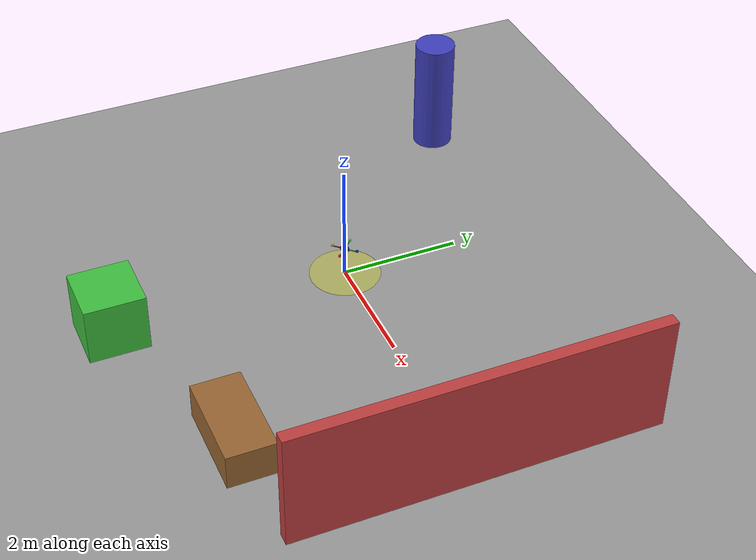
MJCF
<mujoco model="quadcopter_hil">

  <compiler angle="radian" autolimits="true"/>

  <option timestep="0.001" gravity="0 0 -9.81" integrator="RK4">
    <flag contact="enable" energy="enable"/>
  </option>

  <!-- ── Visual defaults ────────────────────────────────────────────────── -->
  <visual>
    <headlight diffuse="0.6 0.6 0.6" ambient="0.3 0.3 0.3" specular="0.2 0.2 0.2"/>
    <rgba haze="0.15 0.25 0.35 1"/>
    <global azimuth="120" elevation="-20"/>
  </visual>

  <default>
    <geom rgba="0.6 0.6 0.6 1" condim="3" friction="1 0.5 0.5"/>
    <joint damping="0.001"/>
  </default>

  <!-- ── Assets ─────────────────────────────────────────────────────────── -->
  <asset>
    <texture type="2d" name="grid_tex" builtin="checker" width="512" height="512"
             rgb1="0.35 0.35 0.35" rgb2="0.45 0.45 0.45"/>
    <material name="grid_mat" texture="grid_tex" texrepeat="20 20"
              specular="0.1" shininess="0.1"/>
    <texture type="skybox" name="sky_tex" builtin="gradient"
             rgb1="0.4 0.6 0.8" rgb2="0.08 0.08 0.25"
             width="512" height="3072"/>
  </asset>

  <!-- ── World ──────────────────────────────────────────────────────────── -->
  <worldbody>
    <!-- Ground -->
    <geom name="ground" type="plane" size="50 50 0.1" material="grid_mat"
          pos="0 0 0"/>

    <!-- Sky light -->
    <light name="sun" pos="0 0 20" dir="0 0.3 -1" castshadow="true"
           diffuse="1 1 1" specular="0.3 0.3 0.3"/>

    <!-- ════════ QUADCOPTER ════════ -->
    <body name="drone" pos="0 0 0.5">
      <freejoint name="root"/>

      <!-- Central body (battery + electronics) -->
      <geom name="fuselage" type="box" size="0.06 0.06 0.025"
            mass="1.0" rgba="0.15 0.15 0.6 1"/>

      <!-- ── Arms (capsule geoms, purely structural + visual) ── -->
      <geom name="arm_fr" type="capsule" fromto="0 0 0  0.156 -0.156 0"
            size="0.008" mass="0.04" rgba="0.7 0.15 0.15 1"/>
      <geom name="arm_bl" type="capsule" fromto="0 0 0 -0.156  0.156 0"
            size="0.008" mass="0.04" rgba="0.15 0.7 0.15 1"/>
      <geom name="arm_fl" type="capsule" fromto="0 0 0  0.156  0.156 0"
            size="0.008" mass="0.04" rgba="0.15 0.7 0.15 1"/>
      <geom name="arm_br" type="capsule" fromto="0 0 0 -0.156 -0.156 0"
            size="0.008" mass="0.04" rgba="0.7 0.15 0.15 1"/>

      <!-- ── Motor housings ── -->
      <geom name="mh1" type="cylinder" pos=" 0.156 -0.156 0.012"
            size="0.022 0.012" mass="0.06" rgba="0.9 0.2 0.2 1"/>
      <geom name="mh2" type="cylinder" pos="-0.156  0.156 0.012"
            size="0.022 0.012" mass="0.06" rgba="0.2 0.9 0.2 1"/>
      <geom name="mh3" type="cylinder" pos=" 0.156  0.156 0.012"
            size="0.022 0.012" mass="0.06" rgba="0.2 0.2 0.9 1"/>
      <geom name="mh4" type="cylinder" pos="-0.156 -0.156 0.012"
            size="0.022 0.012" mass="0.06" rgba="0.9 0.9 0.2 1"/>

      <!-- ── Motor force-application sites ── -->
      <site name="motor1" pos=" 0.156 -0.156 0.025" size="0.004"/>
      <site name="motor2" pos="-0.156  0.156 0.025" size="0.004"/>
      <site name="motor3" pos=" 0.156  0.156 0.025" size="0.004"/>
      <site name="motor4" pos="-0.156 -0.156 0.025" size="0.004"/>

      <!-- ── IMU site (at CG) ── -->
      <site name="imu_site" pos="0 0 0" size="0.008" rgba="1 1 0 0.8"/>

      <!-- ── Forward-facing camera ── -->
      <camera name="fpv_camera" pos="0.07 0 -0.015"
              xyaxes="0 -1 0 0 0 1" fovy="90"/>

      <!-- ── LiDAR site — Z-axis points DOWN for rangefinder ── -->
      <site name="lidar_site" pos="0 0 -0.03" zaxis="0 0 -1"
            size="0.006" rgba="0 1 1 0.8"/>

      <!-- Nose marker (shows +X / forward) -->
      <geom name="nose" type="box" pos="0.085 0 0"
            size="0.025 0.004 0.004" mass="0.005" rgba="1 0.5 0 1"/>
    </body>

    <!-- ════════ ENVIRONMENT OBSTACLES (for LiDAR / camera testing) ════════ -->
    <body name="wall_north" pos="5 0 1">
      <geom type="box" size="0.1 3 1" rgba="0.75 0.25 0.25 0.9"/>
    </body>
    <body name="box_east" pos="0 -4 0.5">
      <geom type="box" size="0.5 0.5 0.5" rgba="0.25 0.75 0.25 0.9"/>
    </body>
    <body name="pillar_sw" pos="-3 3 1.0">
      <geom type="cylinder" size="0.35 1.0" rgba="0.25 0.25 0.75 0.9"/>
    </body>
    <body name="table" pos="3 -3 0.3">
      <geom type="box" size="0.8 0.4 0.3" rgba="0.6 0.4 0.2 0.9"/>
    </body>

    <!-- Landing pad (visual reference) -->
    <body name="pad" pos="0 0 0.001">
      <geom type="cylinder" size="0.6 0.001" rgba="0.85 0.85 0.1 0.4"
            contype="0" conaffinity="0"/>
    </body>
  </worldbody>

  <actuator>
    <!-- M1: Front-Right, CW spin → negative Z reaction torque -->
    <general name="m1_thrust" site="motor1"
             gear="0 0 7.0  0 0 -0.14" ctrlrange="0 1"
             dyntype="none" gaintype="fixed" biastype="none"/>
    <!-- M2: Back-Left, CW spin → negative Z reaction torque -->
    <general name="m2_thrust" site="motor2"
             gear="0 0 7.0  0 0 -0.14" ctrlrange="0 1"
             dyntype="none" gaintype="fixed" biastype="none"/>
    <!-- M3: Front-Left, CCW spin → positive Z reaction torque -->
    <general name="m3_thrust" site="motor3"
             gear="0 0 7.0  0 0  0.14" ctrlrange="0 1"
             dyntype="none" gaintype="fixed" biastype="none"/>
    <!-- M4: Back-Right, CCW spin → positive Z reaction torque -->
    <general name="m4_thrust" site="motor4"
             gear="0 0 7.0  0 0  0.14" ctrlrange="0 1"
             dyntype="none" gaintype="fixed" biastype="none"/>
  </actuator>

  <!-- ════════ SENSORS ════════ -->
  <sensor>
    <!-- 3-axis accelerometer at CG (body-frame specific force) -->
    <accelerometer name="imu_accel" site="imu_site" noise="0.005"/>
    <!-- 3-axis gyroscope at CG (body-frame angular velocity) -->
    <gyro          name="imu_gyro"  site="imu_site" noise="0.001"/>
    <!-- Single-beam rangefinder, fires along site −Z (downward) -->
    <rangefinder   name="lidar_alt" site="lidar_site"/>
  </sensor>

</mujoco>
